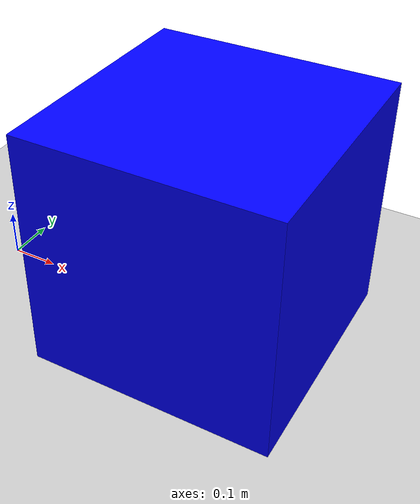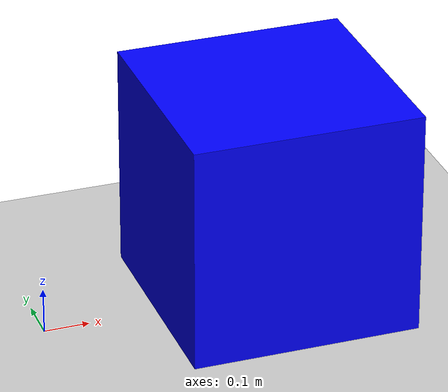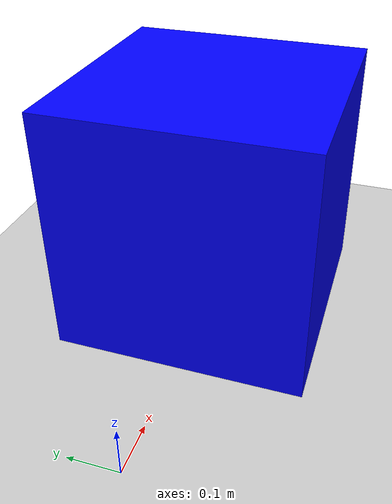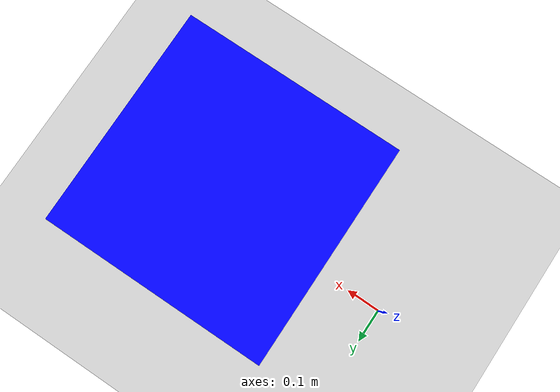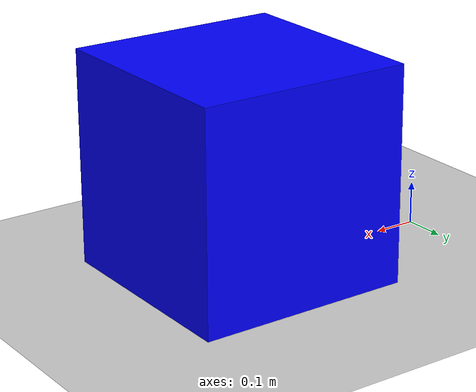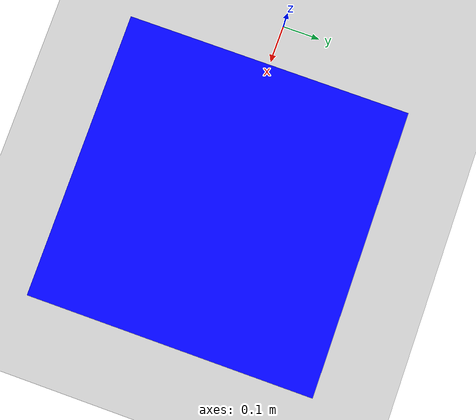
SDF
<?xml version="1.0" ?>
<sdf version="1.6">
  <world name="box_world">
    <gravity>0 0 -9.8</gravity>
    <magnetic_field>6e-06 2.3e-05 -4.2e-05</magnetic_field>
    <gui>
      <camera name="user_camera">
        <pose>0 -5 2 0 0.3 0</pose>
      </camera>
    </gui>
    <light name="sun" type="directional">
      <cast_shadows>1</cast_shadows>
      <pose>0 0 10 0 -0 0</pose>
      <diffuse>0.8 0.8 0.8 1</diffuse>
      <specular>0.2 0.2 0.2 1</specular>
      <attenuation>
        <range>1000</range>
        <constant>0.9</constant>
        <linear>0.01</linear>
        <quadratic>0.001</quadratic>
      </attenuation>
      <direction>-0.5 0.1 -0.9</direction>
    </light>
    <model name="ground_plane">
      <static>1</static>
      <link name="link">
        <collision name="collision">
          <geometry>
            <plane>
              <normal>0 0 1</normal>
              <size>100 100</size>
            </plane>
          </geometry>
          <surface>
            <friction>
              <ode>
                <mu>1</mu>
                <mu2>1</mu2>
              </ode>
            </friction>
            <bounce />
          </surface>
        </collision>
        <visual name="visual">
          <geometry>
            <plane>
              <normal>0 0 1</normal>
              <size>100 100</size>
            </plane>
          </geometry>
          <material>
            <ambient>0.8 0.8 0.8 1</ambient>
            <diffuse>0.8 0.8 0.8 1</diffuse>
            <specular>0.8 0.8 0.8 1</specular>
          </material>
        </visual>
      </link>
    </model>
    <model name="simple_box">
      <pose>0.5 0 0.25 0 0 0</pose>
      <link name="box_link">
        <inertial>
          <mass>1.0</mass>
          <inertia>
            <ixx>0.083</ixx><ixy>0.0</ixy><ixz>0.0</ixz>
            <iyy>0.083</iyy><iyz>0.0</iyz>
            <izz>0.083</izz>
          </inertia>
        </inertial>
        <collision name="box_collision">
          <geometry>
            <box>
              <size>0.5 0.5 0.5</size>
            </box>
          </geometry>
          <surface>
            <friction>
              <ode>
                <mu>1</mu>
                <mu2>1</mu2>
              </ode>
            </friction>
          </surface>
        </collision>
        <visual name="box_visual">
          <geometry>
            <box>
              <size>0.5 0.5 0.5</size>
            </box>
          </geometry>
          <material>
            <ambient>0.0 0.0 1.0 1</ambient>
            <diffuse>0.0 0.0 1.0 1</diffuse>
            <specular>0.0 0.0 1.0 1</specular>
          </material>
        </visual>
      </link>
    </model>
  </world>
</sdf>
